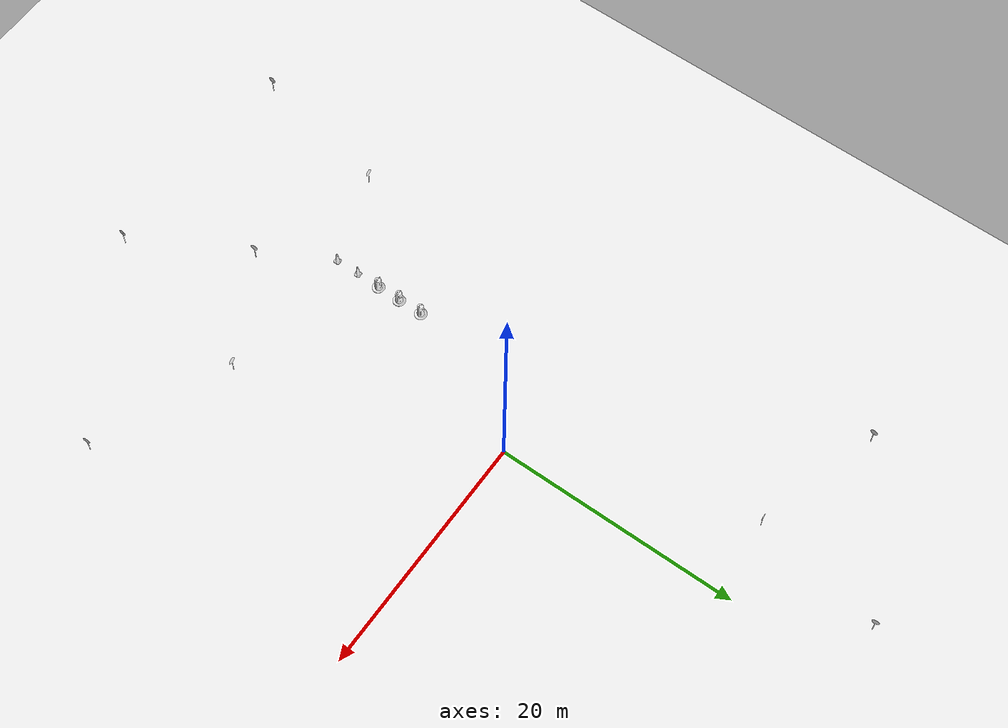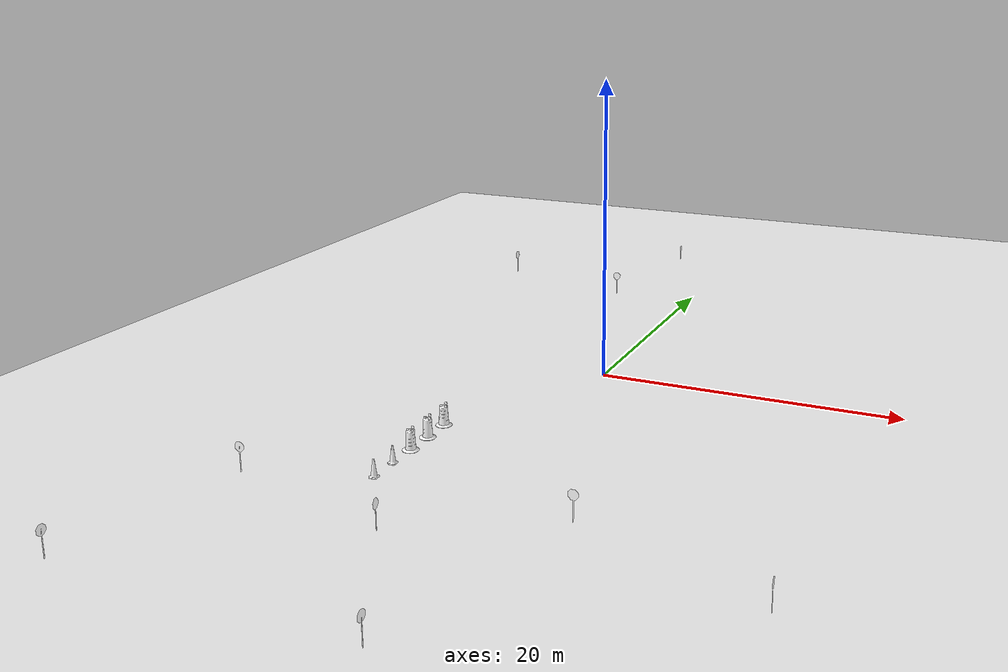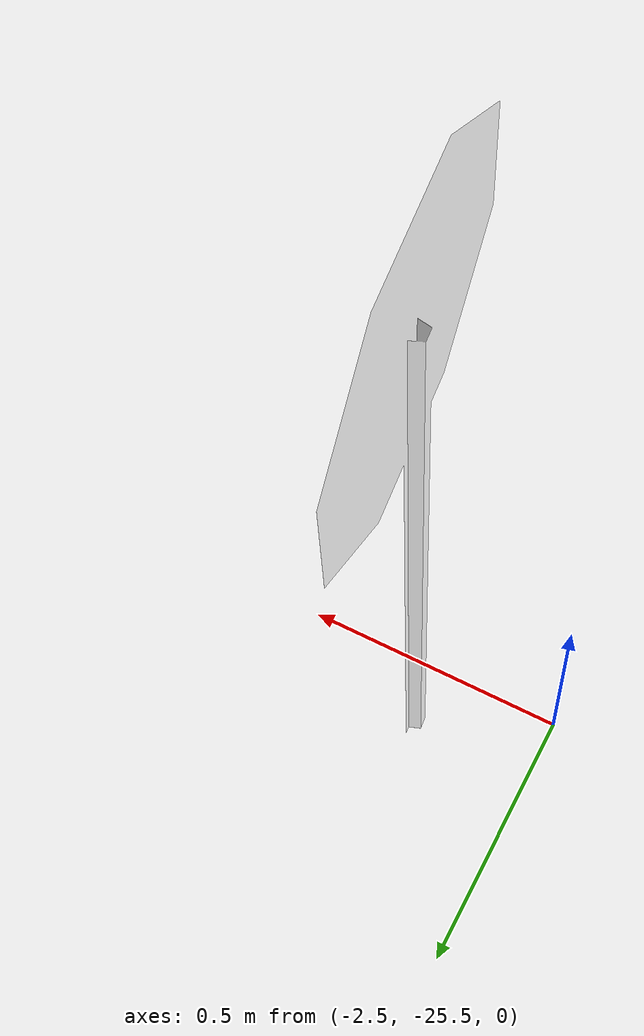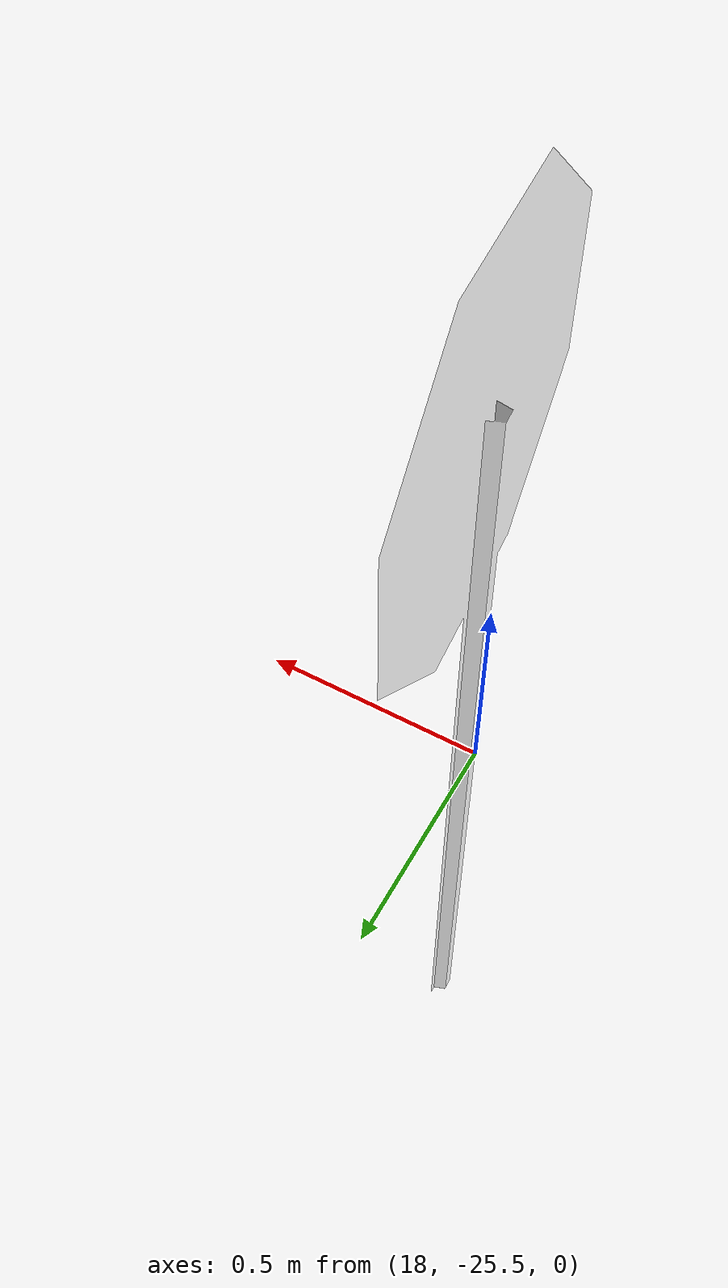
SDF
<sdf version='1.10'>
  <world name='IGVC_AutoNav'>
    <plugin name='gz::sim::systems::Physics' filename='gz-sim-physics-system'/>
    <plugin name='gz::sim::systems::UserCommands' filename='gz-sim-user-commands-system'/>
    <plugin name='gz::sim::systems::SceneBroadcaster' filename='gz-sim-scene-broadcaster-system'/>
    <plugin name='gz::sim::systems::Contact' filename='gz-sim-contact-system'/>
    <plugin name='gz::sim::systems::NavSat' filename='gz-sim-navsat-system'/>
    <spherical_coordinates>
      <surface_model>EARTH_WGS84</surface_model>
      <world_frame_orientation>ENU</world_frame_orientation>
      <latitude_deg>47.478949999999998</latitude_deg>
      <longitude_deg>19.057784999999999</longitude_deg>
      <elevation>0</elevation>
      <heading_deg>0</heading_deg>
    </spherical_coordinates>
    <plugin name='gz::sim::systems::Sensors' filename='gz-sim-sensors-system'>
      <render_engine>ogre2</render_engine>
    </plugin>
    <plugin name='gz::sim::systems::Imu' filename='gz-sim-imu-system'/>
    <plugin name='gz::sim::systems::NavSat' filename='gz-sim-navsat-system'/>
    <gravity>0 0 -9.8000000000000007</gravity>
    <magnetic_field>6.0000000000000002e-06 2.3e-05 -4.1999999999999998e-05</magnetic_field>
    <atmosphere type='adiabatic'/>
    <physics type='ode'>
      <max_step_size>0.001</max_step_size>
      <real_time_factor>1</real_time_factor>
      <real_time_update_rate>1000</real_time_update_rate>
    </physics>
    <scene>
      <ambient>0.400000006 0.400000006 0.400000006 1</ambient>
      <background>0.699999988 0.699999988 0.699999988 1</background>
      <shadows>true</shadows>
    </scene>
    <wind/>
    <spherical_coordinates>
      <surface_model>EARTH_WGS84</surface_model>
      <latitude_deg>0</latitude_deg>
      <longitude_deg>0</longitude_deg>
      <elevation>0</elevation>
      <heading_deg>0</heading_deg>
    </spherical_coordinates>
    <gui fullscreen='false'>
      <camera name='user_camera'>
        <pose>5.5319000000000003 -9.7176899999999993 6.8489500000000003 2.9459705656237252e-17 0.34179700000000035 0.53604000000000029</pose>
        <view_controller>orbit</view_controller>
        <projection_type>perspective</projection_type>
      </camera>
    </gui>
    <include>
      <uri>model://asphalt_ground_plane</uri>
      <name>ground_plane</name>
      <pose>0 0 0 0 0 0</pose>
    </include>
    <include>
      <uri>model://construction_barrel</uri>
      <name>barrel_0</name>
      <pose>-5.7300000000000004 -14.029999999999999 -3.7185655256399826e-11 1.6138709892039056e-11 -2.4366374485970306e-11 8.4290159957825228e-19</pose>
    </include>
    <include>
      <uri>model://construction_barrel</uri>
      <name>barrel_1</name>
      <pose>-5.7300000000000004 -16.029999999999998 -3.7185655261604e-11 1.6138709896705395e-11 -2.4366374485077494e-11 8.4244948740462428e-19</pose>
    </include>
    <include>
      <uri>model://construction_cone</uri>
      <name>cone_0</name>
      <pose>-5.7300000000000004 -18.029999999999998 -2.6624551108939132e-11 1.4094628242311559e-21 -8.1315162936412839e-22 4.6637488728474999e-33</pose>
    </include>
    <include>
      <uri>model://construction_cone</uri>
      <name>cone_1</name>
      <pose>-5.7300000000000004 -20.029999999999998 -2.6624551110673856e-11 2.656295322589486e-21 -2.6834003769016232e-21 6.4324999991877169e-33</pose>
    </include>
    <include>
      <uri>model://construction_barrel</uri>
      <name>barrel_0_1</name>
      <pose>-5.7623201613346104 -11.978818089477544 -5.5286536539828072e-11 2.2612769979842312e-11 -3.5614547048415277e-11 8.4339974016159565e-19</pose>
    </include>
    <include>
      <uri>model://stop_sign</uri>
      <name>stop_sign_1_1</name>
      <pose>2.720539003480329 -34.496704753379028 -8.2878803876759717e-07 2.9130457888130853e-10 -5.0570245772996693e-08 -1.6301700740115683</pose>
    </include>
    <include>
      <uri>model://stop_sign</uri>
      <name>stop_sign_1_1_1_2</name>
      <pose>-15.402521144945494 -34.116809629301102 -8.1233227609283674e-07 -8.1574012537737288e-10 -4.9564691621348435e-08 -1.6301700740115683</pose>
    </include>
    <include>
      <uri>model://stop_sign</uri>
      <name>stop_sign_1_2</name>
      <pose>-12.896847874937761 -22.405149997907429 -1.0746017910836897e-07 -3.4962709571424305e-08 -1.2559117721771534e-08 -3.1217099991917814</pose>
    </include>
    <include>
      <uri>model://stop_sign</uri>
      <name>stop_sign_1_3</name>
      <pose>-2.266098213762207 -25.391612032307442 -1.0329821517226531e-07 9.7071265605038193e-09 -3.4364657660071253e-08 1.6538399873777192</pose>
    </include>
    <include>
      <uri>model://stop_sign</uri>
      <name>stop_sign_1_4</name>
      <pose>17.815939568411135 -24.998566859988209 -1.0329821517226706e-07 9.707126560462859e-09 -3.4364657660074125e-08 1.6538399873777192</pose>
    </include>
    <include>
      <uri>model://stop_sign</uri>
      <name>stop_sign_1_5</name>
      <pose>-4.0292250331973314 29.246181524389144 -1.0329821517226531e-07 9.7071265605671268e-09 -3.4364657660094103e-08 1.6538399873777192</pose>
    </include>
    <include>
      <uri>model://stop_sign</uri>
      <name>stop_sign_1_1_1_2_1</name>
      <pose>-16.680713271719164 21.607640661489739 -8.042271584952805e-07 -1.3609985713127571e-09 -4.9069494970335017e-08 -1.6301700740115679</pose>
    </include>
    <include>
      <uri>model://stop_sign</uri>
      <name>stop_sign_1_6</name>
      <pose>-6.1296715409465232 18.596165898117547 -1.0127861565251134e-07 3.1250656389978253e-08 1.2302969761553067e-08 0.0097550994369961751</pose>
    </include>
    <include>
      <uri>model://stop_sign</uri>
      <name>stop_sign_1_2_1</name>
      <pose>6.4191485066659109 -20.571136488851913 -1.0640384847738182e-07 -3.5167505318403786e-08 -1.2433600653709258e-08 -3.1217099991917814</pose>
    </include>
    <light name='sun' type='directional'>
      <pose>0 0 10 0 0 0</pose>
      <cast_shadows>true</cast_shadows>
      <intensity>1</intensity>
      <direction>-0.5 0.10000000000000001 -0.90000000000000002</direction>
      <diffuse>0.800000012 0.800000012 0.800000012 1</diffuse>
      <specular>0.200000003 0.200000003 0.200000003 1</specular>
      <attenuation>
        <range>1000</range>
        <linear>0.01</linear>
        <constant>0.90000000000000002</constant>
        <quadratic>0.001</quadratic>
      </attenuation>
      <spot>
        <inner_angle>0</inner_angle>
        <outer_angle>0</outer_angle>
        <falloff>0</falloff>
      </spot>
    </light>
  </world>
</sdf>

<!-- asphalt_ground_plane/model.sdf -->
<sdf version="1.10">
  <model name="asphalt_ground_plane">
    <static>true</static>
    <link name="link">
      <!-- keep local pose on the link -->
      <pose>0 0 0 0 0 0</pose>

      <!-- inertial -->
      <inertial>
        <pose>0 0 0 0 0 0</pose>
        <mass>1</mass>
        <inertia>
          <ixx>1</ixx>
          <ixy>0</ixy>
          <ixz>0</ixz>
          <iyy>1</iyy>
          <iyz>0</iyz>
          <izz>1</izz>
        </inertia>
      </inertial>

      <!-- collision -->
      <collision name="collision">
        <geometry>
          <plane>
            <normal>0 0 1</normal>
            <size>64.748999999999995 67.341999999999999</size>
          </plane>
        </geometry>
        <max_contacts>10</max_contacts>
        <surface>
          <friction>
            <ode>
              <mu>100</mu>
              <mu2>50</mu2>
            </ode>
            <torsional>
              <ode />
            </torsional>
          </friction>
          <contact>
            <ode />
          </contact>
          <bounce />
        </surface>
      </collision>

      <!-- visual -->
      <visual name="visual">
        <cast_shadows>false</cast_shadows>
        <geometry>
          <plane>
            <normal>0 0 1</normal>
            <size>64.748999999999995 67.341999999999999</size>
          </plane>
        </geometry>
        <material>
          <diffuse>1 1 1 1</diffuse>
          <specular>1 1 1 1</specular>
          <pbr>
            <metal>
              <albedo_map>file://media/materials/textures/better_lanes.png</albedo_map>
            </metal>
          </pbr>
        </material>
      </visual>

      <self_collide>false</self_collide>
      <enable_wind>false</enable_wind>
      <kinematic>false</kinematic>
    </link>
  </model>
</sdf>

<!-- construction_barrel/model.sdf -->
<sdf version="1.10">
  <model name="construction_barrel">
    <static>false</static>
    <link name="link">
      <pose>0 0 0 0 0 0</pose>

      <inertial>
        <pose>0 0 0.40000000000000002 0 0 0</pose>
        <mass>500</mass>
        <inertia>
          <ixx>51.209600000000002</ixx>
          <iyy>51.209600000000002</iyy>
          <izz>25</izz>
          <ixy>0</ixy>
          <ixz>0</ixz>
          <iyz>0</iyz>
        </inertia>
      </inertial>

      <collision name="collision">
        <geometry>
          <mesh>
            <uri>model://construction_barrel/meshes/construction_barrel.dae</uri>
          </mesh>
        </geometry>
        <max_contacts>10</max_contacts>
        <surface>
          <contact>
            <ode/>
          </contact>
          <bounce/>
          <friction>
            <torsional>
              <ode/>
            </torsional>
            <ode/>
          </friction>
        </surface>
      </collision>

      <visual name="visual">
        <geometry>
          <mesh>
            <uri>model://construction_barrel/meshes/construction_barrel.dae</uri>
          </mesh>
        </geometry>
        <material>
          <ambient>1 1 1 1</ambient>
          <diffuse>1 1 1 1</diffuse>
          <pbr>
            <metal>
              <albedo_map>file://model://construction_barrel/materials/textures/Construction_Barrel_Diffuse.png</albedo_map>
              <roughness>0.75</roughness>
              <metalness>0.0</metalness>
            </metal>
          </pbr>
        </material>
      </visual>

      <self_collide>false</self_collide>
      <enable_wind>false</enable_wind>
      <kinematic>false</kinematic>
    </link>
  </model>
</sdf>

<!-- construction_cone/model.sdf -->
<sdf version="1.10">
  <model name="construction_cone">
    <static>false</static>

    <link name="link">
      <!-- local pose -->
      <pose>0 0 0 0 0 0</pose>

      <!-- inertia -->
      <inertial>
        <pose>0 0 0 0 0 0</pose>
        <mass>1</mass>
        <inertia>
          <ixx>1</ixx>
          <ixy>0</ixy>
          <ixz>0</ixz>
          <iyy>1</iyy>
          <iyz>0</iyz>
          <izz>1</izz>
        </inertia>
      </inertial>

      <!-- collision -->
      <collision name="collision">
        <geometry>
          <mesh>
            <scale>10 10 10</scale>
            <uri>model://construction_cone/meshes/construction_cone.dae</uri>
          </mesh>
        </geometry>
        <max_contacts>10</max_contacts>
        <surface>
          <contact><ode/></contact>
          <bounce/>
          <friction>
            <torsional><ode/></torsional>
            <ode/>
          </friction>
        </surface>
      </collision>

      <!-- visual -->
      <visual name="visual">
        <geometry>
          <mesh>
            <scale>10 10 10</scale>
            <uri>model://construction_cone/meshes/construction_cone.dae</uri>
          </mesh>
        </geometry>
        <material>
          <ambient>1 1 1 1</ambient>
          <diffuse>1 1 1 1</diffuse>
          <pbr>
            <metal>
              <albedo_map>file://model://construction_cone/materials/textures/Construction_Cone_Diffuse.png</albedo_map>
              <roughness>0.75</roughness>
              <metalness>0.0</metalness>
            </metal>
          </pbr>
        </material>
      </visual>

      <self_collide>false</self_collide>
      <enable_wind>false</enable_wind>
      <kinematic>false</kinematic>
    </link>

  </model>
</sdf>

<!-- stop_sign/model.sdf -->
<sdf version="1.10">
  <model name="stop_sign">
    <static>false</static>
    <link name="link">
      <pose>0 0 0 0 0 0</pose>

      <inertial>
        <pose>0 0 -0.40000000000000002 0 0 0</pose>
        <mass>500</mass>
        <inertia>
          <ixx>51.209600000000002</ixx>
          <iyy>51.209600000000002</iyy>
          <izz>25</izz>
          <ixy>0</ixy>
          <ixz>0</ixz>
          <iyz>0</iyz>
        </inertia>
      </inertial>

      <collision name="collision">
        <geometry>
          <mesh>
            <uri>model://stop_sign/meshes/stop_sign.dae</uri>
          </mesh>
        </geometry>
        <max_contacts>10</max_contacts>
        <surface>
          <contact><ode/></contact>
          <bounce/>
          <friction>
            <torsional><ode/></torsional>
            <ode/>
          </friction>
        </surface>
      </collision>

      <visual name="visual">
        <geometry>
          <mesh>
            <uri>model://stop_sign/meshes/stop_sign.dae</uri>
          </mesh>
        </geometry>
        <material>
          <ambient>1 1 1 1</ambient>
          <diffuse>1 1 1 1</diffuse>
          <emissive>0.1 0 0 0.1</emissive>
          <pbr>
            <metal>
              <albedo_map>file://model://stop_sign/materials/textures/StopSignDiffuse.png</albedo_map>
              <roughness>0.75</roughness>
              <metalness>0.0</metalness>
            </metal>
          </pbr>
        </material>
      </visual>

      <self_collide>false</self_collide>
      <enable_wind>false</enable_wind>
      <kinematic>false</kinematic>
    </link>
  </model>
</sdf>
